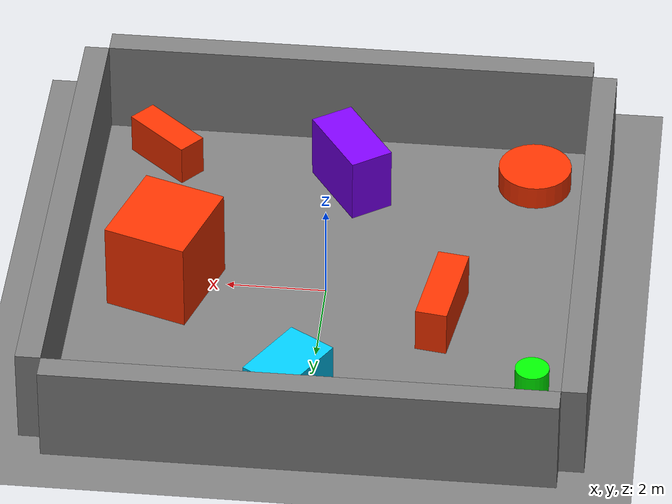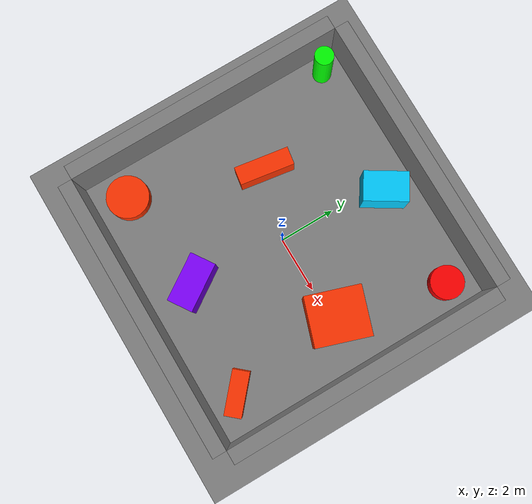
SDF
<?xml version="1.0" ?>
<sdf version="1.8">
  <world name="random_world">
    <physics name="1ms" type="ignored">
      <max_step_size>0.01</max_step_size>
      <real_time_update_rate>400</real_time_update_rate>
      <real_time_factor>2.0</real_time_factor>
    </physics>

    <plugin
      filename="ignition-gazebo-physics-system"
      name="ignition::gazebo::systems::Physics">
      <include_entity_names>true</include_entity_names>
    </plugin>
    <plugin
      filename="ignition-gazebo-sensors-system"
      name="ignition::gazebo::systems::Sensors">
      <render_engine>ogre</render_engine>
    </plugin>
    <plugin
      filename="ignition-gazebo-user-commands-system"
      name="ignition::gazebo::systems::UserCommands"> <!-- do no delete -->
    </plugin>
    <plugin
      filename="libignition-gazebo-contact-system.so"
      name="ignition::gazebo::systems::Contact">
      <topic>/world/random_world/physics/contacts</topic>
    </plugin>
    <plugin
      filename="ignition-gazebo-scene-broadcaster-system"
      name="ignition::gazebo::systems::SceneBroadcaster">
    </plugin>

    <light name='sun' type='directional'>
      <pose>0 0 10 0 -0 0</pose>
      <cast_shadows>true</cast_shadows>
      <intensity>1</intensity>
      <direction>-0.5 0.5 -1</direction>
      <diffuse>1 1 1 1</diffuse>
      <specular>0.1 0.1 0.1 1</specular>
      <attenuation>
        <range>10</range>
        <linear>1</linear>
        <constant>1</constant>
        <quadratic>0</quadratic>
      </attenuation>
    </light>

    <model name='ground_plane'>
      <static>true</static>
      <link name='link'>
        <collision name='collision'>
          <geometry>
            <plane>
              <normal>0 0 1</normal>
              <size>50 50</size>
            </plane>
          </geometry>
          <surface><friction><ode/></friction></surface>
        </collision>
        <visual name='visual'>
          <geometry>
            <plane>
              <normal>0 0 1</normal>
              <size>50 50</size>
            </plane>
          </geometry>
          <material>
            <ambient>0.5 0.5 0.5 1</ambient>
            <diffuse>0.5 0.5 0.5 1</diffuse>
          </material>
        </visual>
      </link>
    </model>

    <model name="north_wall">
      <pose>0 5.25 1.0 0 0 0</pose>
      <link name="link">
        <collision name="collision">
          <geometry>
            <box><size>10 0.5 2.0</size></box>
          </geometry>
        </collision>
        <visual name="visual">
          <geometry>
            <box><size>10 0.5 2.0</size></box>
          </geometry>
          <material>
            <ambient>0.5 0.5 0.5 1</ambient>
            <diffuse>0.5 0.5 0.5 1</diffuse>
          </material>
        </visual>
      </link>
      <static>true</static>
    </model>

    <model name="south_wall">
      <pose>0 -5.25 1.0 0 0 0</pose>
      <link name="link">
        <collision name="collision">
          <geometry>
            <box><size>10 0.5 2.0</size></box>
          </geometry>
        </collision>
        <visual name="visual">
          <geometry>
            <box><size>10 0.5 2.0</size></box>
          </geometry>
          <material>
            <ambient>0.5 0.5 0.5 1</ambient>
            <diffuse>0.5 0.5 0.5 1</diffuse>
          </material>
        </visual>
      </link>
      <static>true</static>
    </model>

    <model name="east_wall">
      <pose>5.25 0 1.0 0 0 0</pose>
      <link name="link">
        <collision name="collision">
          <geometry>
            <box><size>0.5 10 2.0</size></box>
          </geometry>
        </collision>
        <visual name="visual">
          <geometry>
            <box><size>0.5 10 2.0</size></box>
          </geometry>
          <material>
            <ambient>0.5 0.5 0.5 1</ambient>
            <diffuse>0.5 0.5 0.5 1</diffuse>
          </material>
        </visual>
      </link>
      <static>true</static>
    </model>

    <model name="west_wall">
      <pose>-5.25 0 1.0 0 0 0</pose>
      <link name="link">
        <collision name="collision">
          <geometry>
            <box><size>0.5 10 2.0</size></box>
          </geometry>
        </collision>
        <visual name="visual">
          <geometry>
            <box><size>0.5 10 2.0</size></box>
          </geometry>
          <material>
            <ambient>0.5 0.5 0.5 1</ambient>
            <diffuse>0.5 0.5 0.5 1</diffuse>
          </material>
        </visual>
      </link>
      <static>true</static>
    </model>

    <model name="box0">
      <pose>3.683780033369276 -3.9293383716512302 0.42794371003605813 0 0 2.42497068493268</pose>
      <link name="link">
        <collision name="collision">
          <geometry>
            <box><size>1.5482145044857927 0.5968663499647129 0.8558874200721163</size></box>
          </geometry>
        </collision>
        <visual name="visual">
          <geometry>
            <box><size>1.5482145044857927 0.5968663499647129 0.8558874200721163</size></box>
          </geometry>
          <material>
            <ambient>1.0 0.2 0.0 1</ambient>
            <diffuse>1.0 0.2 0.0 1</diffuse>
          </material>
        </visual>
      </link>
      <static>true</static>
    </model>

    <model name="box1">
      <pose>-2.3960627060525885 0.7065930273295953 0.47773756429862524 0 0 1.4180667326594991</pose>
      <link name="link">
        <collision name="collision">
          <geometry>
            <box><size>1.9417776243706621 0.6336617058421505 0.9554751285972505</size></box>
          </geometry>
        </collision>
        <visual name="visual">
          <geometry>
            <box><size>1.9417776243706621 0.6336617058421505 0.9554751285972505</size></box>
          </geometry>
          <material>
            <ambient>1.0 0.2 0.0 1</ambient>
            <diffuse>1.0 0.2 0.0 1</diffuse>
          </material>
        </visual>
      </link>
      <static>true</static>
    </model>

    <model name="box2">
      <pose>-0.19476236555263426 -3.355623729316967 0.6857271008740238 0 0 2.1599574300822497</pose>
      <link name="link">
        <collision name="collision">
          <geometry>
            <box><size>1.7386793241038738 0.9020266528112173 1.3714542017480476</size></box>
          </geometry>
        </collision>
        <visual name="visual">
          <geometry>
            <box><size>1.7386793241038738 0.9020266528112173 1.3714542017480476</size></box>
          </geometry>
          <material>
            <ambient>0.5 0.0 1.0 1</ambient>
            <diffuse>0.5 0.0 1.0 1</diffuse>
          </material>
        </visual>
      </link>
      <static>true</static>
    </model>

    <model name="box3">
      <pose>0.3528505956849166 3.805156215580756 0.7021885070580016 0 0 2.5870440080117785</pose>
      <link name="link">
        <collision name="collision">
          <geometry>
            <box><size>1.0261876300721462 1.5393269389131372 1.4043770141160032</size></box>
          </geometry>
        </collision>
        <visual name="visual">
          <geometry>
            <box><size>1.0261876300721462 1.5393269389131372 1.4043770141160032</size></box>
          </geometry>
          <material>
            <ambient>0.0 0.8 1.0 1</ambient>
            <diffuse>0.0 0.8 1.0 1</diffuse>
          </material>
        </visual>
      </link>
      <static>true</static>
    </model>

    <model name="box4">
      <pose>3.2074012229429485 0.17048074939013436 0.9361695104391912 0 0 1.2519052175349097</pose>
      <link name="link">
        <collision name="collision">
          <geometry>
            <box><size>1.9223310623950898 1.7128605400325405 1.8723390208783823</size></box>
          </geometry>
        </collision>
        <visual name="visual">
          <geometry>
            <box><size>1.9223310623950898 1.7128605400325405 1.8723390208783823</size></box>
          </geometry>
          <material>
            <ambient>1.0 0.2 0.0 1</ambient>
            <diffuse>1.0 0.2 0.0 1</diffuse>
          </material>
        </visual>
      </link>
      <static>true</static>
    </model>

    <model name="cylinder0">
      <pose>-4.400952763882283 4.237271812177735 0.9483179600973479 0 0 4.443739996960471</pose>
      <link name="link">
        <collision name="collision">
          <geometry>
            <cylinder><radius>0.3315796842824376</radius><length>1.8966359201946958</length></cylinder>
          </geometry>
        </collision>
        <visual name="visual">
          <geometry>
            <cylinder><radius>0.3315796842824376</radius><length>1.8966359201946958</length></cylinder>
          </geometry>
          <material>
            <ambient>0.0 1.0 0.0 1</ambient>
            <diffuse>0.0 1.0 0.0 1</diffuse>
          </material>
        </visual>
      </link>
      <static>true</static>
    </model>

    <model name="cylinder1">
      <pose>4.12742579698191 4.011311667331441 0.2887244460041881 0 0 3.414117483864934</pose>
      <link name="link">
        <collision name="collision">
          <geometry>
            <cylinder><radius>0.588148783941403</radius><length>0.5774488920083762</length></cylinder>
          </geometry>
        </collision>
        <visual name="visual">
          <geometry>
            <cylinder><radius>0.588148783941403</radius><length>0.5774488920083762</length></cylinder>
          </geometry>
          <material>
            <ambient>1.0 0.0 0.0 1</ambient>
            <diffuse>1.0 0.0 0.0 1</diffuse>
          </material>
        </visual>
      </link>
      <static>true</static>
    </model>

    <model name="cylinder2">
      <pose>-3.9361477630708874 -3.8223491267878664 0.253161906571973 0 0 0.6444982365079392</pose>
      <link name="link">
        <collision name="collision">
          <geometry>
            <cylinder><radius>0.747468074976634</radius><length>0.506323813143946</length></cylinder>
          </geometry>
        </collision>
        <visual name="visual">
          <geometry>
            <cylinder><radius>0.747468074976634</radius><length>0.506323813143946</length></cylinder>
          </geometry>
          <material>
            <ambient>1.0 0.2 0.0 1</ambient>
            <diffuse>1.0 0.2 0.0 1</diffuse>
          </material>
        </visual>
      </link>
      <static>true</static>
    </model>

    <model name="top_view_camera">
      <static>true</static>
      <pose>0 0 12 0 1.57079632679 0</pose>
      <link name="link">
        <sensor name="top_view_camera" type="camera">
          <always_on>true</always_on>
          <update_rate>30</update_rate>
          <topic>top_view_camera/image</topic>
          <camera>
            <horizontal_fov>1.35</horizontal_fov>
            <image>
              <width>1280</width>
              <height>720</height>
              <format>R8G8B8</format>
            </image>
            <clip>
              <near>0.1</near>
              <far>100</far>
            </clip>
          </camera>
        </sensor>
      </link>
    </model>

  </world>
</sdf>
